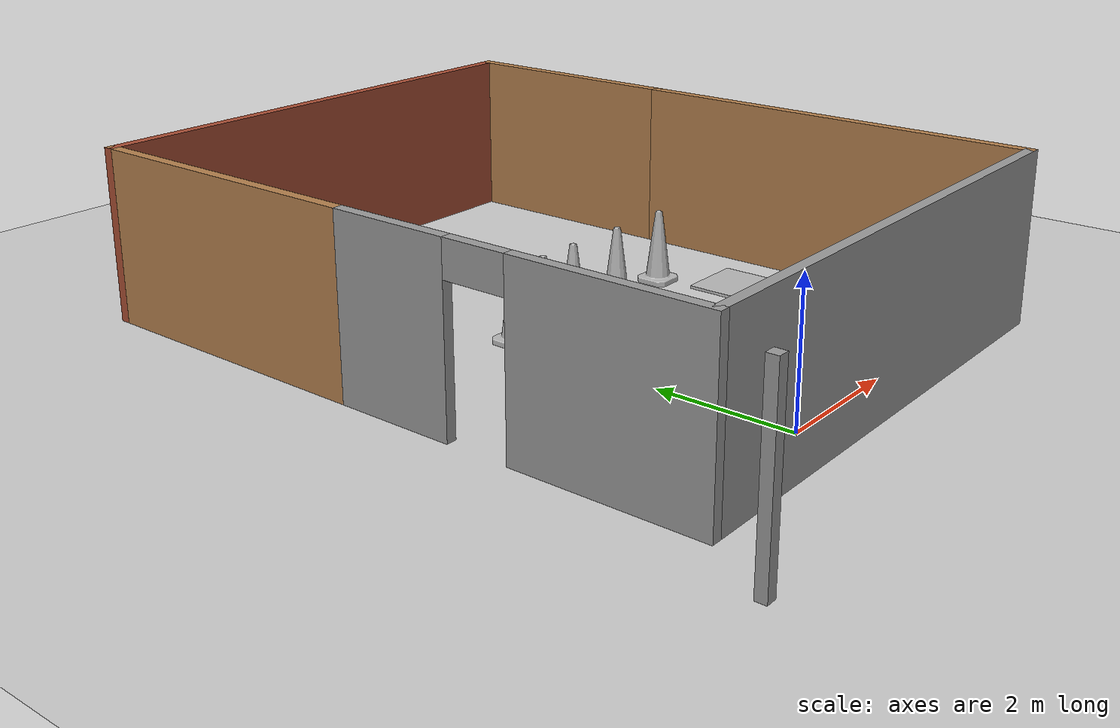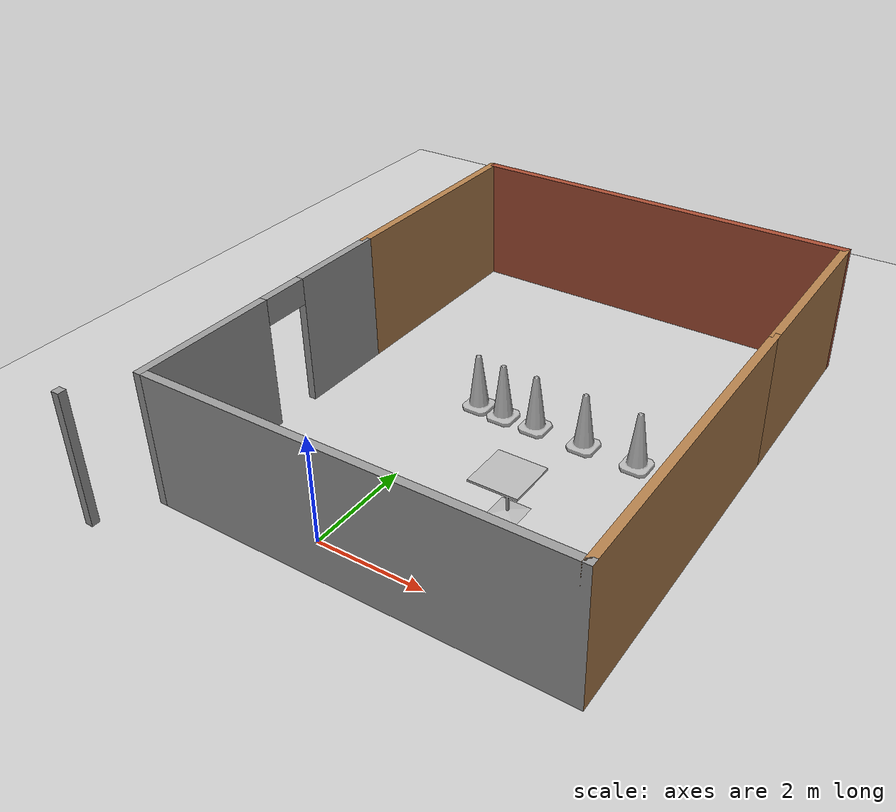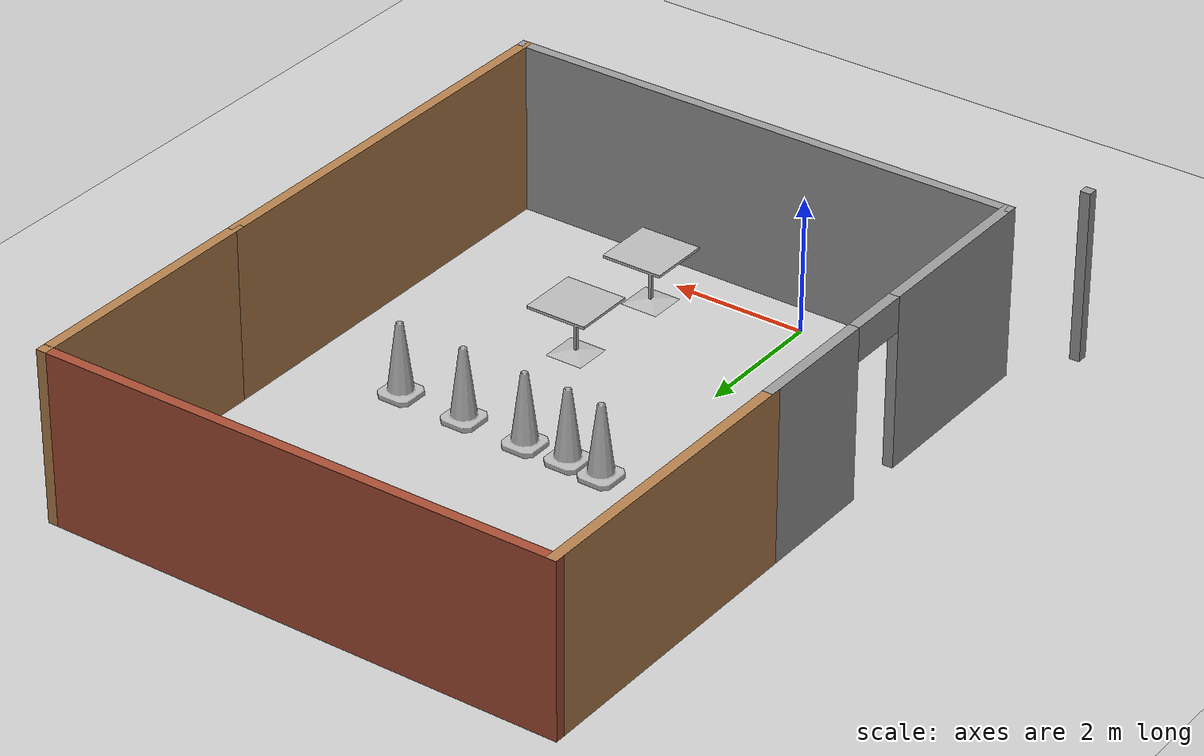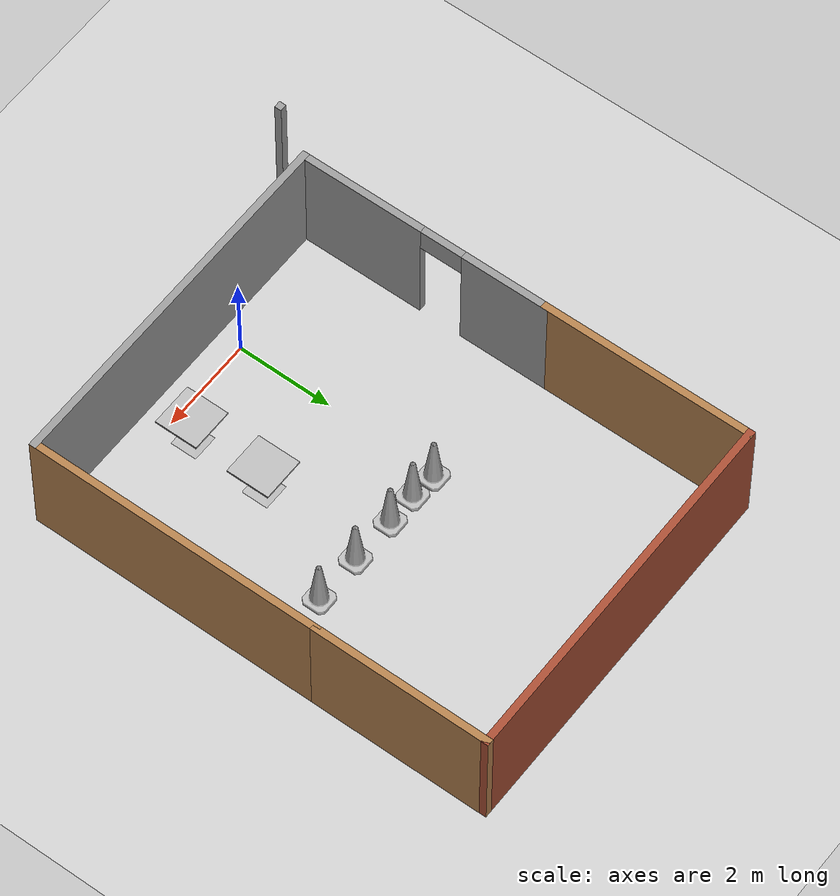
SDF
<sdf version="1.7">
 <world name="default">
  <light name="sun" type="directional">
   <pose>0 0 10 0 -0 0</pose>
   <diffuse>0.8 0.8 0.8 1</diffuse>
   <specular>0.2 0.2 0.2 1</specular>
   <attenuation>
    <range>1000</range>
    <constant>0.9</constant>
    <linear>0.01</linear>
    <quadratic>0.001</quadratic>
   </attenuation>
   <direction>-0.5 0.1 -0.9</direction>
   <spot><inner_angle>0</inner_angle><outer_angle>0</outer_angle><falloff>0</falloff></spot>
  </light>
  <model name="ground_plane">
   <static>1</static>
   <link name="link">
    <collision name="collision">
     <geometry><plane><normal>0 0 1</normal><size>100 100</size></plane></geometry>
     <surface>
      <contact><collide_bitmask>65535</collide_bitmask></contact>
      <friction><ode><mu>100</mu><mu2>50</mu2></ode></friction>
     </surface>
    </collision>
    <visual name="visual">
     <cast_shadows>0</cast_shadows>
     <geometry><plane><normal>0 0 1</normal><size>100 100</size></plane></geometry>
     <material>
      <script><uri>file://media/materials/scripts/gazebo.material</uri><name>Gazebo/Grey</name></script>
     </material>
    </visual>
   </link>
  </model>
  <gravity>0 0 -9.8</gravity>
  <magnetic_field>6e-06 2.3e-05 -4.2e-05</magnetic_field>
  <atmosphere type="adiabatic"/>
  <physics type="ode">
   <max_step_size>0.001</max_step_size>
   <real_time_factor>1</real_time_factor>
   <real_time_update_rate>1000</real_time_update_rate>
  </physics>
  <scene><ambient>0.4 0.4 0.4 1</ambient><background>0.7 0.7 0.7 1</background><shadows>1</shadows></scene>
  <audio><device>default</device></audio>
  <spherical_coordinates>
   <surface_model>EARTH_WGS84</surface_model>
   <latitude_deg>0</latitude_deg>
   <longitude_deg>0</longitude_deg>
   <elevation>0</elevation>
   <heading_deg>0</heading_deg>
  </spherical_coordinates>
  <model name="cafe_table">
   <static>1</static>
   <link name="link">
    <collision name="surface">
     <pose>0 0 0.755 0 -0 0</pose>
     <geometry><box><size>0.913 0.913 0.04</size></box></geometry>
    </collision>
    <collision name="column">
     <pose>0 0 0.37 0 -0 0</pose>
     <geometry><box><size>0.042 0.042 0.74</size></box></geometry>
    </collision>
    <collision name="base">
     <pose>0 0 0.02 0 -0 0</pose>
     <geometry><box><size>0.56 0.56 0.04</size></box></geometry>
    </collision>
    <visual name="visual">
     <geometry><mesh><uri>model://cafe_table/meshes/cafe_table.dae</uri></mesh></geometry>
    </visual>
   </link>
   <pose>2.08939 2.15871 0 0 -0 0</pose>
  </model>
  <model name="cafe_table_clone">
   <static>1</static>
   <link name="link">
    <collision name="surface">
     <pose>0 0 0.755 0 -0 0</pose>
     <geometry><box><size>0.913 0.913 0.04</size></box></geometry>
    </collision>
    <collision name="column">
     <pose>0 0 0.37 0 -0 0</pose>
     <geometry><box><size>0.042 0.042 0.74</size></box></geometry>
    </collision>
    <collision name="base">
     <pose>0 0 0.02 0 -0 0</pose>
     <geometry><box><size>0.56 0.56 0.04</size></box></geometry>
    </collision>
    <visual name="visual">
     <geometry><mesh><uri>model://cafe_table/meshes/cafe_table.dae</uri></mesh></geometry>
    </visual>
   </link>
   <pose>2.04635 0.527946 0 0 -0 0</pose>
  </model>
  <model name="Construction Cone">
   <link name="link">
    <collision name="collision">
     <geometry>
      <mesh><scale>10 10 10</scale><uri>model://construction_cone/meshes/construction_cone.dae</uri></mesh>
     </geometry>
    </collision>
    <visual name="visual">
     <geometry>
      <mesh><scale>10 10 10</scale><uri>model://construction_cone/meshes/construction_cone.dae</uri></mesh>
     </geometry>
    </visual>
    <inertial>
     <inertia><ixx>1</ixx><ixy>0</ixy><ixz>0</ixz><iyy>1</iyy><iyz>0</iyz><izz>1</izz></inertia>
     <mass>1</mass>
    </inertial>
   </link>
   <pose>0.080992 4.38878 -0 0 -0 0</pose>
  </model>
  <model name="Construction Cone_clone">
   <link name="link">
    <collision name="collision">
     <geometry>
      <mesh><scale>10 10 10</scale><uri>model://construction_cone/meshes/construction_cone.dae</uri></mesh>
     </geometry>
    </collision>
    <visual name="visual">
     <geometry>
      <mesh><scale>10 10 10</scale><uri>model://construction_cone/meshes/construction_cone.dae</uri></mesh>
     </geometry>
    </visual>
    <inertial>
     <inertia><ixx>1</ixx><ixy>0</ixy><ixz>0</ixz><iyy>1</iyy><iyz>0</iyz><izz>1</izz></inertia>
     <mass>1</mass>
    </inertial>
   </link>
   <pose>0.629139 4.34177 -0 0 -1e-06 0</pose>
  </model>
  <model name="Construction Cone_clone_0">
   <link name="link">
    <collision name="collision">
     <geometry>
      <mesh><scale>10 10 10</scale><uri>model://construction_cone/meshes/construction_cone.dae</uri></mesh>
     </geometry>
    </collision>
    <visual name="visual">
     <geometry>
      <mesh><scale>10 10 10</scale><uri>model://construction_cone/meshes/construction_cone.dae</uri></mesh>
     </geometry>
    </visual>
    <inertial>
     <inertia><ixx>1</ixx><ixy>0</ixy><ixz>0</ixz><iyy>1</iyy><iyz>0</iyz><izz>1</izz></inertia>
     <mass>1</mass>
    </inertial>
   </link>
   <pose>1.29444 4.35005 -0 0 -0 0</pose>
  </model>
  <model name="Construction Cone_clone_1">
   <link name="link">
    <collision name="collision">
     <geometry>
      <mesh><scale>10 10 10</scale><uri>model://construction_cone/meshes/construction_cone.dae</uri></mesh>
     </geometry>
    </collision>
    <visual name="visual">
     <geometry>
      <mesh><scale>10 10 10</scale><uri>model://construction_cone/meshes/construction_cone.dae</uri></mesh>
     </geometry>
    </visual>
    <inertial>
     <inertia><ixx>1</ixx><ixy>0</ixy><ixz>0</ixz><iyy>1</iyy><iyz>0</iyz><izz>1</izz></inertia>
     <mass>1</mass>
    </inertial>
   </link>
   <pose>2.27529 4.32807 -0 0 -0 0</pose>
  </model>
  <model name="Construction Cone_clone_2">
   <link name="link">
    <collision name="collision">
     <geometry>
      <mesh><scale>10 10 10</scale><uri>model://construction_cone/meshes/construction_cone.dae</uri></mesh>
     </geometry>
    </collision>
    <visual name="visual">
     <geometry>
      <mesh><scale>10 10 10</scale><uri>model://construction_cone/meshes/construction_cone.dae</uri></mesh>
     </geometry>
    </visual>
    <inertial>
     <inertia><ixx>1</ixx><ixy>0</ixy><ixz>0</ixz><iyy>1</iyy><iyz>0</iyz><izz>1</izz></inertia>
     <mass>1</mass>
    </inertial>
   </link>
   <pose>3.29986 4.31683 -0 0 -0 0</pose>
  </model>
  <model name="building_edit">
   <pose>0.828128 3.77676 0 0 -0 0</pose>
   <link name="Wall_10">
    <collision name="Wall_10_Collision">
     <geometry><box><size>4.5 0.15 2.5</size></box></geometry>
     <pose>0 0 1.25 0 -0 0</pose>
    </collision>
    <visual name="Wall_10_Visual">
     <pose>0 0 1.25 0 -0 0</pose>
     <geometry><box><size>4.5 0.15 2.5</size></box></geometry>
     <material>
      <script><uri>file://media/materials/scripts/gazebo.material</uri><name>Gazebo/Wood</name></script>
      <ambient>1 1 1 1</ambient>
     </material>
     <meta><layer>0</layer></meta>
    </visual>
    <pose>-3.50187 3.17176 0 0 -0 -1.5708</pose>
   </link>
   <link name="Wall_3">
    <collision name="Wall_3_Collision">
     <geometry><box><size>0.15 0.15 2.5</size></box></geometry>
     <pose>0 0 1.25 0 -0 0</pose>
    </collision>
    <visual name="Wall_3_Visual">
     <pose>0 0 1.25 0 -0 0</pose>
     <geometry><box><size>0.15 0.15 2.5</size></box></geometry>
     <material>
      <script><uri>file://media/materials/scripts/gazebo.material</uri><name>Gazebo/Grey</name></script>
      <ambient>1 1 1 1</ambient>
     </material>
     <meta><layer>0</layer></meta>
    </visual>
    <pose>-4.09813 -5.34676 0 0 -0 0</pose>
   </link>
   <link name="Wall_5">
    <pose>-3.50187 -1.67824 0 0 -0 -1.5708</pose>
    <visual name="Wall_5_Visual_0">
     <pose>-1.81055 0 1.25 0 -0 0</pose>
     <geometry><box><size>1.87889 0.15 2.5</size></box></geometry>
     <material>
      <script><uri>file://media/materials/scripts/gazebo.material</uri><name>Gazebo/Grey</name></script>
      <ambient>1 1 1 1</ambient>
     </material>
     <meta><layer>0</layer></meta>
    </visual>
    <collision name="Wall_5_Collision_0">
     <geometry><box><size>1.87889 0.15 2.5</size></box></geometry>
     <pose>-1.81055 0 1.25 0 -0 0</pose>
    </collision>
    <visual name="Wall_5_Visual_1">
     <pose>1.38945 0 1.25 0 -0 0</pose>
     <geometry><box><size>2.72111 0.15 2.5</size></box></geometry>
     <material>
      <script><uri>file://media/materials/scripts/gazebo.material</uri><name>Gazebo/Grey</name></script>
      <ambient>1 1 1 1</ambient>
     </material>
     <meta><layer>0</layer></meta>
    </visual>
    <collision name="Wall_5_Collision_1">
     <geometry><box><size>2.72111 0.15 2.5</size></box></geometry>
     <pose>1.38945 0 1.25 0 -0 0</pose>
    </collision>
    <visual name="Wall_5_Visual_2">
     <pose>-0.421105 0 2.25 0 -0 0</pose>
     <geometry><box><size>0.9 0.15 0.5</size></box></geometry>
     <material>
      <script><uri>file://media/materials/scripts/gazebo.material</uri><name>Gazebo/Grey</name></script>
      <ambient>1 1 1 1</ambient>
     </material>
     <meta><layer>0</layer></meta>
    </visual>
    <collision name="Wall_5_Collision_2">
     <geometry><box><size>0.9 0.15 0.5</size></box></geometry>
     <pose>-0.421105 0 2.25 0 -0 0</pose>
    </collision>
   </link>
   <link name="Wall_6">
    <collision name="Wall_6_Collision">
     <geometry><box><size>7.75 0.15 2.5</size></box></geometry>
     <pose>0 0 1.25 0 -0 0</pose>
    </collision>
    <visual name="Wall_6_Visual">
     <pose>0 0 1.25 0 -0 0</pose>
     <geometry><box><size>7.75 0.15 2.5</size></box></geometry>
     <material>
      <script><uri>file://media/materials/scripts/gazebo.material</uri><name>Gazebo/Grey</name></script>
      <ambient>1 1 1 1</ambient>
     </material>
     <meta><layer>0</layer></meta>
    </visual>
    <pose>0.298128 -4.35324 0 0 -0 0</pose>
   </link>
   <link name="Wall_7">
    <collision name="Wall_7_Collision">
     <geometry><box><size>6.25 0.15 2.5</size></box></geometry>
     <pose>0 0 1.25 0 -0 0</pose>
    </collision>
    <visual name="Wall_7_Visual">
     <pose>0 0 1.25 0 -0 0</pose>
     <geometry><box><size>6.25 0.15 2.5</size></box></geometry>
     <material>
      <script><uri>file://media/materials/scripts/gazebo.material</uri><name>Gazebo/Wood</name></script>
      <ambient>1 1 1 1</ambient>
     </material>
     <meta><layer>0</layer></meta>
    </visual>
    <pose>4.09813 -1.30324 0 0 -0 1.5708</pose>
   </link>
   <link name="Wall_8">
    <collision name="Wall_8_Collision">
     <geometry><box><size>3.75 0.15 2.5</size></box></geometry>
     <pose>0 0 1.25 0 -0 0</pose>
    </collision>
    <visual name="Wall_8_Visual">
     <pose>0 0 1.25 0 -0 0</pose>
     <geometry><box><size>3.75 0.15 2.5</size></box></geometry>
     <material>
      <script><uri>file://media/materials/scripts/gazebo.material</uri><name>Gazebo/Wood</name></script>
      <ambient>1 1 1 1</ambient>
     </material>
     <meta><layer>0</layer></meta>
    </visual>
    <pose>4.09813 3.54676 0 0 -0 1.5708</pose>
   </link>
   <link name="Wall_9">
    <collision name="Wall_9_Collision">
     <geometry><box><size>7.75 0.15 2.5</size></box></geometry>
     <pose>0 0 1.25 0 -0 0</pose>
    </collision>
    <visual name="Wall_9_Visual">
     <pose>0 0 1.25 0 -0 0</pose>
     <geometry><box><size>7.75 0.15 2.5</size></box></geometry>
     <material>
      <script><uri>file://media/materials/scripts/gazebo.material</uri><name>Gazebo/Bricks</name></script>
      <ambient>1 1 1 1</ambient>
     </material>
     <meta><layer>0</layer></meta>
    </visual>
    <pose>0.298128 5.34676 0 0 -0 3.14159</pose>
   </link>
   <static>1</static>
  </model>
 </world>
</sdf>
